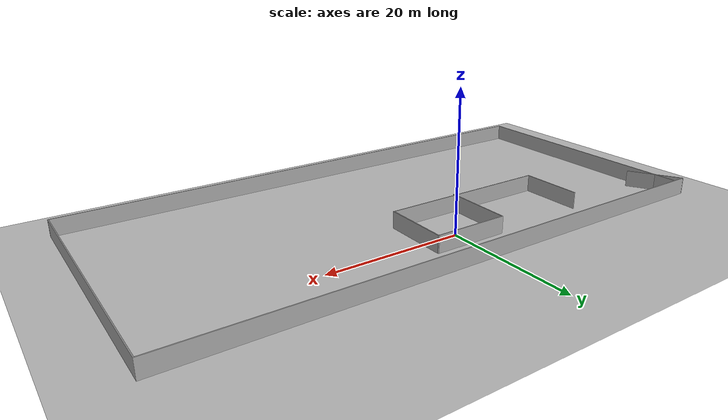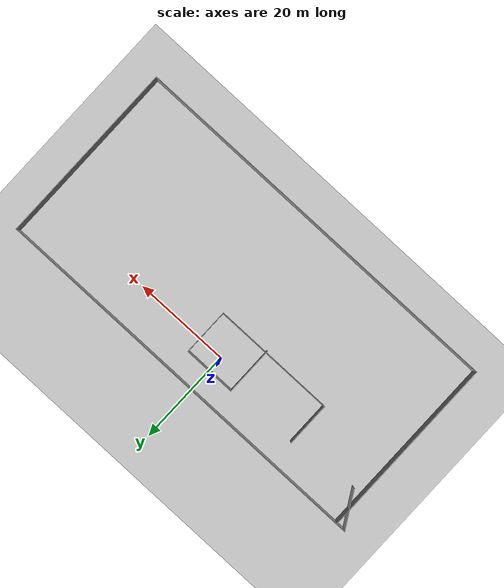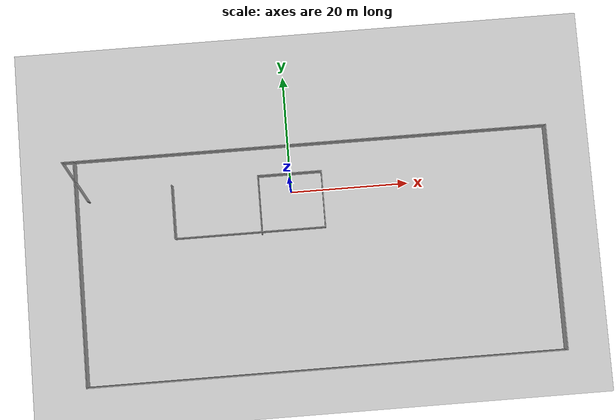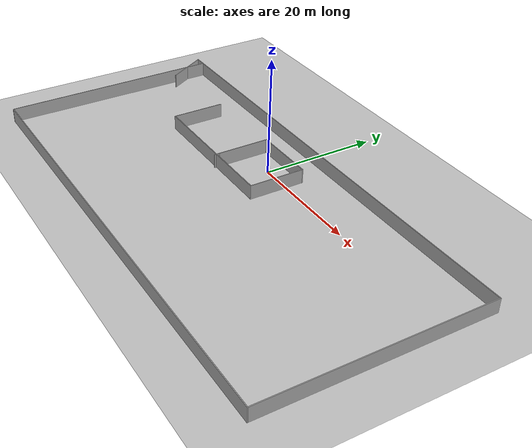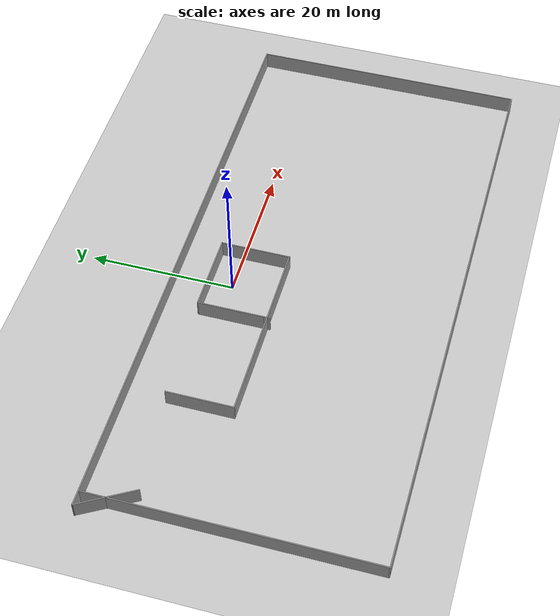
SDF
<sdf version="1.6">
 <world name="default">
  <light name="sun" type="directional">
   <pose>0 0 10 0 -0 0</pose>
   <diffuse>0.8 0.8 0.8 1</diffuse>
   <specular>0.1 0.1 0.1 1</specular>
   <attenuation>
    <range>1000</range>
    <constant>0.9</constant>
    <linear>0.01</linear>
    <quadratic>0.001</quadratic>
   </attenuation>
   <direction>-0.5 0.5 -1</direction>
  </light>
  <model name="ground_plane">
   <static>1</static>
   <link name="link">
    <collision name="collision">
     <geometry><plane><normal>0 0 1</normal><size>100 100</size></plane></geometry>
     <surface><friction><ode><mu>100</mu><mu2>50</mu2></ode></friction></surface>
    </collision>
    <visual name="visual">
     <cast_shadows>0</cast_shadows>
     <geometry><plane><normal>0 0 1</normal><size>100 100</size></plane></geometry>
     <material>
      <script><uri>file://media/materials/scripts/gazebo.material</uri><name>Gazebo/Grey</name></script>
     </material>
    </visual>
   </link>
  </model>
  <gravity>0 0 -9.8</gravity>
  <magnetic_field>6e-06 2.3e-05 -4.2e-05</magnetic_field>
  <atmosphere type="adiabatic"/>
  <physics name="default_physics" default="0" type="ode">
   <max_step_size>0.001</max_step_size>
   <real_time_factor>1</real_time_factor>
   <real_time_update_rate>1000</real_time_update_rate>
  </physics>
  <scene><ambient>0.4 0.4 0.4 1</ambient><background>0.7 0.7 0.7 1</background><shadows>1</shadows></scene>
  <spherical_coordinates>
   <surface_model>EARTH_WGS84</surface_model>
   <latitude_deg>0</latitude_deg>
   <longitude_deg>0</longitude_deg>
   <elevation>0</elevation>
   <heading_deg>0</heading_deg>
  </spherical_coordinates>
  <model name="house">
   <pose>2.72487 -11.2436 0 0 -0 0</pose>
   <link name="Wall_0">
    <collision name="Wall_0_Collision">
     <geometry><box><size>8.25 0.15 2.5</size></box></geometry>
     <pose>0 0 1.25 0 -0 0</pose>
    </collision>
    <visual name="Wall_0_Visual">
     <pose>0 0 1.25 0 -0 0</pose>
     <geometry><box><size>8.25 0.15 2.5</size></box></geometry>
     <material>
      <script><uri>file://media/materials/scripts/gazebo.material</uri><name>Gazebo/Grey</name></script>
      <ambient>1 1 1 1</ambient>
     </material>
    </visual>
    <pose>-39.3863 15.6539 0 0 -0 2.0944</pose>
   </link>
   <link name="Wall_1">
    <collision name="Wall_1_Collision">
     <geometry><box><size>83 0.15 2.5</size></box></geometry>
     <pose>0 0 1.25 0 -0 0</pose>
    </collision>
    <visual name="Wall_1_Visual">
     <pose>0 0 1.25 0 -0 0</pose>
     <geometry><box><size>83 0.15 2.5</size></box></geometry>
     <material>
      <script><uri>file://media/materials/scripts/gazebo.material</uri><name>Gazebo/Grey</name></script>
      <ambient>1 1 1 1</ambient>
     </material>
    </visual>
    <pose>0.013726 19.1613 0 0 -0 0</pose>
   </link>
   <link name="Wall_10">
    <collision name="Wall_10_Collision">
     <geometry><box><size>9.25 0.15 2.5</size></box></geometry>
     <pose>0 0 1.25 0 -0 0</pose>
    </collision>
    <visual name="Wall_10_Visual">
     <pose>0 0 1.25 0 -0 0</pose>
     <geometry><box><size>9.25 0.15 2.5</size></box></geometry>
     <material>
      <script><uri>file://media/materials/scripts/gazebo.material</uri><name>Gazebo/Grey</name></script>
      <ambient>1 1 1 1</ambient>
     </material>
    </visual>
    <pose>-8.23605 9.73299 0 0 0 -1.5708</pose>
   </link>
   <link name="Wall_11">
    <collision name="Wall_11_Collision">
     <geometry><box><size>1 0.15 2.5</size></box></geometry>
     <pose>0 0 1.25 0 -0 0</pose>
    </collision>
    <visual name="Wall_11_Visual">
     <pose>0 0 1.25 0 -0 0</pose>
     <geometry><box><size>1 0.15 2.5</size></box></geometry>
     <material>
      <script><uri>file://media/materials/scripts/gazebo.material</uri><name>Gazebo/Grey</name></script>
      <ambient>1 1 1 1</ambient>
     </material>
    </visual>
    <pose>-8.23605 4.75799 0 0 0 -1.5708</pose>
   </link>
   <link name="Wall_2">
    <collision name="Wall_2_Collision">
     <geometry><box><size>38.5 0.15 2.5</size></box></geometry>
     <pose>0 0 1.25 0 -0 0</pose>
    </collision>
    <visual name="Wall_2_Visual">
     <pose>0 0 1.25 0 -0 0</pose>
     <geometry><box><size>38.5 0.15 2.5</size></box></geometry>
     <material>
      <script><uri>file://media/materials/scripts/gazebo.material</uri><name>Gazebo/Grey</name></script>
      <ambient>1 1 1 1</ambient>
     </material>
    </visual>
    <pose>41.4387 -0.013725 0 0 0 -1.5708</pose>
   </link>
   <link name="Wall_3">
    <collision name="Wall_3_Collision">
     <geometry><box><size>81 0.15 2.5</size></box></geometry>
     <pose>0 0 1.25 0 -0 0</pose>
    </collision>
    <visual name="Wall_3_Visual">
     <pose>0 0 1.25 0 -0 0</pose>
     <geometry><box><size>81 0.15 2.5</size></box></geometry>
     <material>
      <script><uri>file://media/materials/scripts/gazebo.material</uri><name>Gazebo/Grey</name></script>
      <ambient>1 1 1 1</ambient>
     </material>
    </visual>
    <pose>1.01373 -19.1887 0 0 -0 3.14159</pose>
   </link>
   <link name="Wall_4">
    <collision name="Wall_4_Collision">
     <geometry><box><size>38.5 0.15 2.5</size></box></geometry>
     <pose>0 0 1.25 0 -0 0</pose>
    </collision>
    <visual name="Wall_4_Visual">
     <pose>0 0 1.25 0 -0 0</pose>
     <geometry><box><size>38.5 0.15 2.5</size></box></geometry>
     <material>
      <script><uri>file://media/materials/scripts/gazebo.material</uri><name>Gazebo/Grey</name></script>
      <ambient>1 1 1 1</ambient>
     </material>
    </visual>
    <pose>-39.4113 -0.013725 0 0 -0 1.5708</pose>
   </link>
   <link name="Wall_6">
    <collision name="Wall_6_Collision">
     <geometry><box><size>9.25 0.15 2.5</size></box></geometry>
     <pose>0 0 1.25 0 -0 0</pose>
    </collision>
    <visual name="Wall_6_Visual">
     <pose>0 0 1.25 0 -0 0</pose>
     <geometry><box><size>9.25 0.15 2.5</size></box></geometry>
     <material>
      <script><uri>file://media/materials/scripts/gazebo.material</uri><name>Gazebo/Grey</name></script>
      <ambient>1 1 1 1</ambient>
     </material>
    </visual>
    <pose>-22.9861 9.23299 0 0 0 -1.5708</pose>
   </link>
   <link name="Wall_7">
    <collision name="Wall_7_Collision">
     <geometry><box><size>25.75 0.15 2.5</size></box></geometry>
     <pose>0 0 1.25 0 -0 0</pose>
    </collision>
    <visual name="Wall_7_Visual">
     <pose>0 0 1.25 0 -0 0</pose>
     <geometry><box><size>25.75 0.15 2.5</size></box></geometry>
     <material>
      <script><uri>file://media/materials/scripts/gazebo.material</uri><name>Gazebo/Grey</name></script>
      <ambient>1 1 1 1</ambient>
     </material>
    </visual>
    <pose>-10.1861 4.68299 0 0 -0 0</pose>
   </link>
   <link name="Wall_8">
    <collision name="Wall_8_Collision">
     <geometry><box><size>9.75 0.15 2.5</size></box></geometry>
     <pose>0 0 1.25 0 -0 0</pose>
    </collision>
    <visual name="Wall_8_Visual">
     <pose>0 0 1.25 0 -0 0</pose>
     <geometry><box><size>9.75 0.15 2.5</size></box></geometry>
     <material>
      <script><uri>file://media/materials/scripts/gazebo.material</uri><name>Gazebo/Grey</name></script>
      <ambient>1 1 1 1</ambient>
     </material>
    </visual>
    <pose>2.61395 9.48299 0 0 -0 1.5708</pose>
   </link>
   <link name="Wall_9">
    <collision name="Wall_9_Collision">
     <geometry><box><size>11 0.15 2.5</size></box></geometry>
     <pose>0 0 1.25 0 -0 0</pose>
    </collision>
    <visual name="Wall_9_Visual">
     <pose>0 0 1.25 0 -0 0</pose>
     <geometry><box><size>11 0.15 2.5</size></box></geometry>
     <material>
      <script><uri>file://media/materials/scripts/gazebo.material</uri><name>Gazebo/Grey</name></script>
      <ambient>1 1 1 1</ambient>
     </material>
    </visual>
    <pose>-2.81105 14.283 0 0 -0 3.14159</pose>
   </link>
   <static>1</static>
  </model>
 </world>
</sdf>
